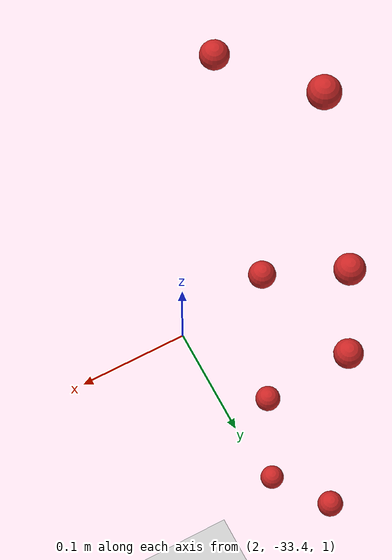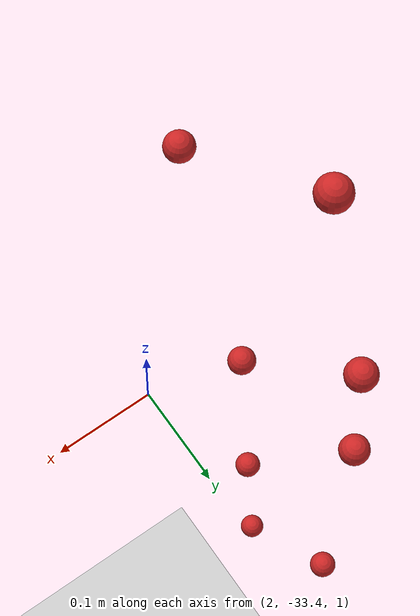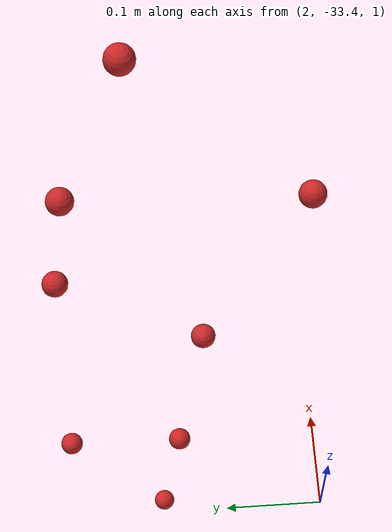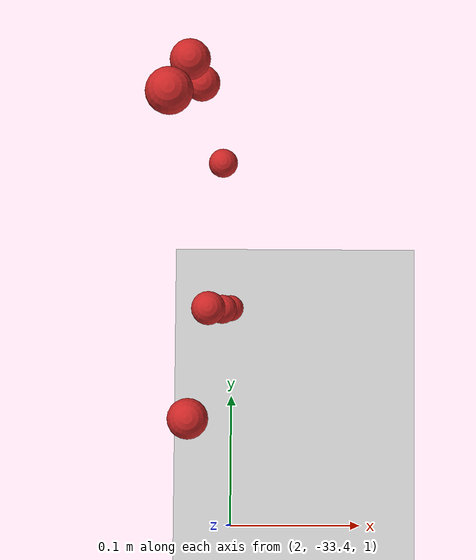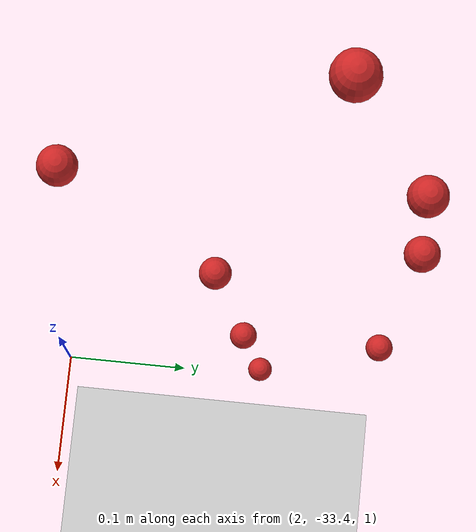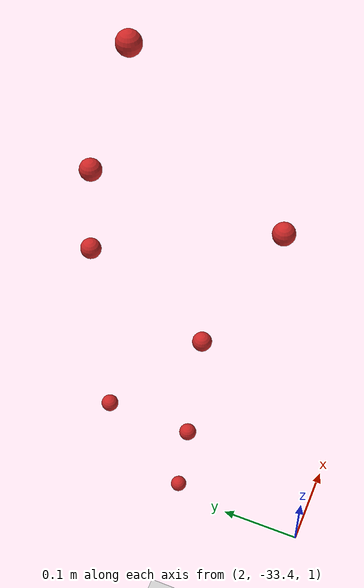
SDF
<sdf version="1.4">
 <world name="default">
  <model name="ground_plane">
   <static>1</static>
   <link name="link">
    <collision name="collision">
     <geometry><plane><normal>0 0 1</normal><size>100 100</size></plane></geometry>
     <surface><friction><ode><mu>100</mu><mu2>50</mu2></ode></friction></surface>
    </collision>
    <visual name="visual">
     <cast_shadows>0</cast_shadows>
     <geometry><plane><normal>0 0 1</normal><size>100 100</size></plane></geometry>
     <material>
      <script><uri>file://media/materials/scripts/gazebo.material</uri><name>Gazebo/Grey</name></script>
     </material>
    </visual>
    <velocity_decay><linear>0</linear><angular>0</angular></velocity_decay>
   </link>
  </model>
  <model name="apple345">
   <link name="my_apple">
    <inertial>
     <pose>2 0 0 0 -0 0</pose>
     <mass>1</mass>
     <inertia><ixx>1</ixx><ixy>0</ixy><ixz>0</ixz><iyy>1</iyy><iyz>0</iyz><izz>1</izz></inertia>
    </inertial>
    <collision name="my_apple_collision">
     <pose>2 0 1 0 -0 0</pose>
     <geometry><sphere><radius>0.01</radius></sphere></geometry>
    </collision>
    <visual name="my_apple_visual">
     <pose>2 0 1 0 -0 0</pose>
     <geometry><sphere><radius>0.01</radius></sphere></geometry>
     <material><script><name>Gazebo/Red</name><uri>__default__</uri></script></material>
    </visual>
    <gravity>0</gravity>
    <velocity_decay><linear>0</linear><angular>0</angular></velocity_decay>
   </link>
   <pose>0 -33.2348 0.035822 0 -0 0</pose>
   <static>0</static>
  </model>
  <model name="apple346">
   <link name="my_apple">
    <inertial>
     <pose>2 0 0 0 -0 0</pose>
     <mass>1</mass>
     <inertia><ixx>1</ixx><ixy>0</ixy><ixz>0</ixz><iyy>1</iyy><iyz>0</iyz><izz>1</izz></inertia>
    </inertial>
    <collision name="my_apple_collision">
     <pose>2 0 1 0 -0 0</pose>
     <geometry><sphere><radius>0.01</radius></sphere></geometry>
    </collision>
    <visual name="my_apple_visual">
     <pose>2 0 1 0 -0 0</pose>
     <geometry><sphere><radius>0.01</radius></sphere></geometry>
     <material><script><name>Gazebo/Red</name><uri>__default__</uri></script></material>
    </visual>
    <gravity>0</gravity>
    <velocity_decay><linear>0</linear><angular>0</angular></velocity_decay>
   </link>
   <pose>0 -33.1515 0.191139 0 -0 0</pose>
   <static>0</static>
  </model>
  <model name="apple347">
   <link name="my_apple">
    <inertial>
     <pose>2 0 0 0 -0 0</pose>
     <mass>1</mass>
     <inertia><ixx>1</ixx><ixy>0</ixy><ixz>0</ixz><iyy>1</iyy><iyz>0</iyz><izz>1</izz></inertia>
    </inertial>
    <collision name="my_apple_collision">
     <pose>2 0 1 0 -0 0</pose>
     <geometry><sphere><radius>0.01</radius></sphere></geometry>
    </collision>
    <visual name="my_apple_visual">
     <pose>2 0 1 0 -0 0</pose>
     <geometry><sphere><radius>0.01</radius></sphere></geometry>
     <material><script><name>Gazebo/Red</name><uri>__default__</uri></script></material>
    </visual>
    <gravity>0</gravity>
    <velocity_decay><linear>0</linear><angular>0</angular></velocity_decay>
   </link>
   <pose>0 -33.2232 0.7354 0 -0 0</pose>
   <static>0</static>
  </model>
  <model name="apple350">
   <link name="my_apple">
    <inertial>
     <pose>2 0 0 0 -0 0</pose>
     <mass>1</mass>
     <inertia><ixx>1</ixx><ixy>0</ixy><ixz>0</ixz><iyy>1</iyy><iyz>0</iyz><izz>1</izz></inertia>
    </inertial>
    <collision name="my_apple_collision">
     <pose>2 0 1 0 -0 0</pose>
     <geometry><sphere><radius>0.01</radius></sphere></geometry>
    </collision>
    <visual name="my_apple_visual">
     <pose>2 0 1 0 -0 0</pose>
     <geometry><sphere><radius>0.01</radius></sphere></geometry>
     <material><script><name>Gazebo/Red</name><uri>__default__</uri></script></material>
    </visual>
    <gravity>0</gravity>
    <velocity_decay><linear>0</linear><angular>0</angular></velocity_decay>
   </link>
   <pose>0 -33.2739 0.38671 0 -0 0</pose>
   <static>0</static>
  </model>
  <model name="apple351">
   <link name="my_apple">
    <inertial>
     <pose>2 0 0 0 -0 0</pose>
     <mass>1</mass>
     <inertia><ixx>1</ixx><ixy>0</ixy><ixz>0</ixz><iyy>1</iyy><iyz>0</iyz><izz>1</izz></inertia>
    </inertial>
    <collision name="my_apple_collision">
     <pose>2 0 1 0 -0 0</pose>
     <geometry><sphere><radius>0.01</radius></sphere></geometry>
    </collision>
    <visual name="my_apple_visual">
     <pose>2 0 1 0 -0 0</pose>
     <geometry><sphere><radius>0.01</radius></sphere></geometry>
     <material><script><name>Gazebo/Red</name><uri>__default__</uri></script></material>
    </visual>
    <gravity>0</gravity>
    <velocity_decay><linear>0</linear><angular>0</angular></velocity_decay>
   </link>
   <pose>0 -33.3494 0.582793 0 -0 0</pose>
   <static>0</static>
  </model>
  <model name="apple353">
   <link name="my_apple">
    <inertial>
     <pose>2 0 0 0 -0 0</pose>
     <mass>1</mass>
     <inertia><ixx>1</ixx><ixy>0</ixy><ixz>0</ixz><iyy>1</iyy><iyz>0</iyz><izz>1</izz></inertia>
    </inertial>
    <collision name="my_apple_collision">
     <pose>2 0 1 0 -0 0</pose>
     <geometry><sphere><radius>0.01</radius></sphere></geometry>
    </collision>
    <visual name="my_apple_visual">
     <pose>2 0 1 0 -0 0</pose>
     <geometry><sphere><radius>0.01</radius></sphere></geometry>
     <material><script><name>Gazebo/Red</name><uri>__default__</uri></script></material>
    </visual>
    <gravity>0</gravity>
    <velocity_decay><linear>0</linear><angular>0</angular></velocity_decay>
   </link>
   <pose>0 -33.1751 0.590985 0 -0 0</pose>
   <static>0</static>
  </model>
  <model name="apple361">
   <link name="my_apple">
    <inertial>
     <pose>2 0 0 0 -0 0</pose>
     <mass>1</mass>
     <inertia><ixx>1</ixx><ixy>0</ixy><ixz>0</ixz><iyy>1</iyy><iyz>0</iyz><izz>1</izz></inertia>
    </inertial>
    <collision name="my_apple_collision">
     <pose>2 0 1 0 -0 0</pose>
     <geometry><sphere><radius>0.01</radius></sphere></geometry>
    </collision>
    <visual name="my_apple_visual">
     <pose>2 0 1 0 -0 0</pose>
     <geometry><sphere><radius>0.01</radius></sphere></geometry>
     <material><script><name>Gazebo/Red</name><uri>__default__</uri></script></material>
    </visual>
    <gravity>0</gravity>
    <velocity_decay><linear>0</linear><angular>0</angular></velocity_decay>
   </link>
   <pose>0 -33.2523 0.186695 0 -0 0</pose>
   <static>0</static>
  </model>
  <model name="apple379">
   <link name="my_apple">
    <inertial>
     <pose>2 0 0 0 -0 0</pose>
     <mass>1</mass>
     <inertia><ixx>1</ixx><ixy>0</ixy><ixz>0</ixz><iyy>1</iyy><iyz>0</iyz><izz>1</izz></inertia>
    </inertial>
    <collision name="my_apple_collision">
     <pose>2 0 1 0 -0 0</pose>
     <geometry><sphere><radius>0.01</radius></sphere></geometry>
    </collision>
    <visual name="my_apple_visual">
     <pose>2 0 1 0 -0 0</pose>
     <geometry><sphere><radius>0.01</radius></sphere></geometry>
     <material><script><name>Gazebo/Red</name><uri>__default__</uri></script></material>
    </visual>
    <gravity>0</gravity>
    <velocity_decay><linear>0</linear><angular>0</angular></velocity_decay>
   </link>
   <pose>0 -33.162 0.482144 0 -0 0</pose>
   <static>0</static>
  </model>
 </world>
</sdf>
